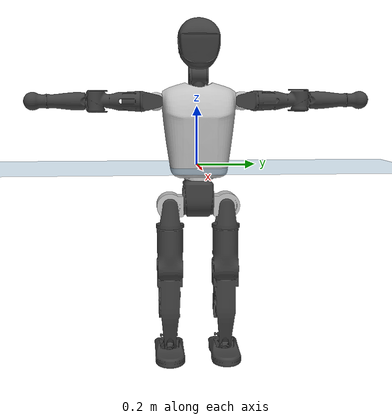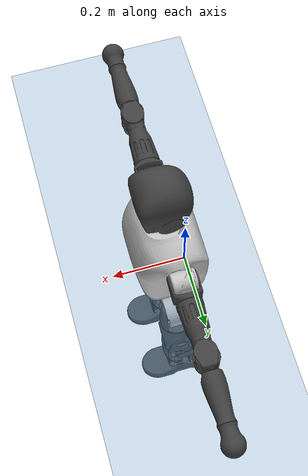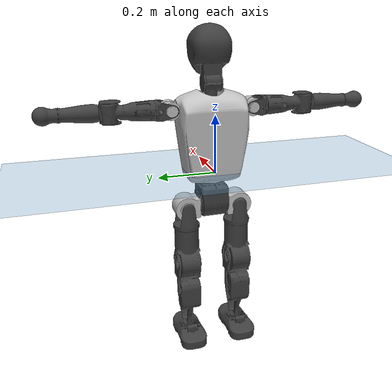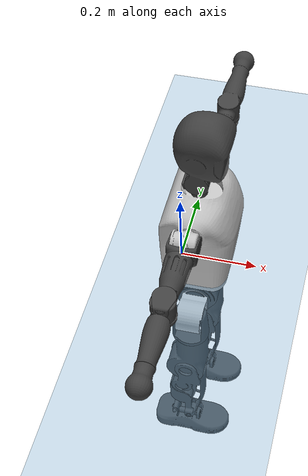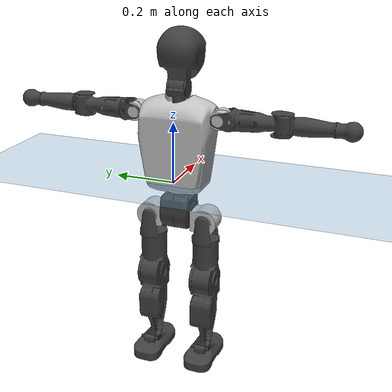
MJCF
<mujoco model="T1">
  <compiler angle="radian" assetdir="assets" balanceinertia="true" inertiafromgeom="false"/>

  <option timestep="0.005" density="1.2" viscosity="2e-05"/>

  <size nkey="1"/>

  <visual>
    <quality shadowsize="8192"/>
    <map shadowclip="0.5"/>
  </visual>

  <default>
    <default class="/">
      <joint armature="0.01" damping="0.01" frictionloss="0.1"/>
      <geom contype="0" conaffinity="0" group="1" solref="-1000 -80"/>
      <site size="0.01 0.005 0.005" group="5"/>
      <general forcelimited="true" biastype="affine" gainprm="25" biasprm="0 -25 -0.6"/>
      <default class="t1">
        <geom rgba="0.25 0.25 0.25 1"/>
        <default class="visual">
          <geom type="mesh" group="2"/>
        </default>
        <default class="collision">
          <geom group="3"/>
        </default>
        <default class="foot">
          <geom size="0.1115 0.05 0.015" type="box" condim="6" group="4" priority="1" solimp="0.015 1 0.015"/>
        </default>
        <default class="reward_collision_sphere">
          <geom group="5" rgba="1 0 0 1"/>
        </default>
      </default>
    </default>
  </default>

  <asset>
    <texture type="skybox" colorspace="auto" name="//unnamed_texture_0" builtin="gradient" rgb1="0.95 0.95 0.95" rgb2="0.95 0.95 0.95" width="100" height="600"/>
    <texture type="2d" colorspace="auto" name="texplane" builtin="checker" rgb1="0.345 0.575 0.748" rgb2="0.345 0.575 0.748" markrgb="1 1 1" width="512" height="512"/>
    <material name="MatPlane" class="/" texture="texplane" texuniform="true" texrepeat="2 2" specular="0.9"/>
    <mesh name="Trunk" class="/" file="Trunk.stl"/>
    <mesh name="H1" class="/" file="H1.stl"/>
    <mesh name="H2" class="/" file="H2.stl"/>
    <mesh name="AL1" class="/" file="AL1.stl"/>
    <mesh name="AL2" class="/" file="AL2.stl"/>
    <mesh name="AL3" class="/" file="AL3.stl"/>
    <mesh name="left_hand_link" class="/" file="left_hand_link.stl"/>
    <mesh name="AR1" class="/" file="AR1.stl"/>
    <mesh name="AR2" class="/" file="AR2.stl"/>
    <mesh name="AR3" class="/" file="AR3.stl"/>
    <mesh name="right_hand_link" class="/" file="right_hand_link.stl"/>
    <mesh name="Waist" class="/" file="Waist.stl"/>
    <mesh name="Hip_Pitch_Left" class="/" file="Hip_Pitch_Left.stl"/>
    <mesh name="Hip_Roll_Left" class="/" file="Hip_Roll_Left.stl"/>
    <mesh name="Hip_Yaw_Left" class="/" file="Hip_Yaw_Left.stl"/>
    <mesh name="Shank_Left" class="/" file="Shank_Left.stl"/>
    <mesh name="Ankle_Cross_Left" class="/" file="Ankle_Cross_Left.stl"/>
    <mesh name="left_foot_link" class="/" file="left_foot_link.stl"/>
    <mesh name="Hip_Pitch_Right" class="/" file="Hip_Pitch_Right.stl"/>
    <mesh name="Hip_Roll_Right" class="/" file="Hip_Roll_Right.stl"/>
    <mesh name="Hip_Yaw_Right" class="/" file="Hip_Yaw_Right.stl"/>
    <mesh name="Shank_Right" class="/" file="Shank_Right.stl"/>
    <mesh name="Ankle_Cross_Right" class="/" file="Ankle_Cross_Right.stl"/>
    <mesh name="right_foot_link" class="/" file="right_foot_link.stl"/>
  </asset>

  <worldbody>
    <geom name="floor" class="/" size="100 100 0.125" type="plane" group="0" material="MatPlane"/>
    <light name="toplight_shadow" class="/" pos="0 0 5" dir="0.0990148 0.0990148 -0.990148" type="directional" ambient="0.04 0.04 0.04" diffuse="0.55 0.55 0.55" specular="0.12 0.12 0.12"/>
    <light name="toplight_fill" class="/" pos="0 0 5" dir="0.0990148 0.0990148 -0.990148" type="directional" castshadow="false" ambient="0.04 0.04 0.04" diffuse="0.3 0.3 0.3" specular="0.08 0.08 0.08"/>
    <body name="trunk" childclass="t1" pos="-0.000109047 0.000254439 0.000127284" quat="1 -6.99701e-06 4.47277e-05 1.54673e-05">
      <inertial pos="0.0430294 -0.000685787 0.104848" quat="0.99993 0.00114608 -0.0116393 -0.00171865" mass="8.73465" diaginertia="0.0294508 0.0518892 0.0543124"/>
      <joint name="//unnamed_joint_0" type="free" armature="0" damping="0" frictionloss="0"/>
      <geom name="//unnamed_geom_1" class="visual" rgba="0.76 0.76 0.76 1" mesh="Trunk"/>
      <geom name="//unnamed_geom_2" class="collision" size="0.0677637 0.0903515 0.135527" pos="0.0477767 0 0.119284" type="box"/>
      <geom name="//unnamed_geom_3" class="reward_collision_sphere" size="0.103904" pos="0.0477767 0 0.0994033"/>
      <geom name="//unnamed_geom_4" class="reward_collision_sphere" size="0.0135527" pos="0.0477767 0.0782199 0"/>
      <geom name="//unnamed_geom_5" class="reward_collision_sphere" size="0.0135527" pos="0.0477767 -0.0782199 0"/>
      <geom name="//unnamed_geom_6" class="reward_collision_sphere" size="0.0135527" pos="0.0477767 0.0984651 0.178926"/>
      <geom name="//unnamed_geom_7" class="reward_collision_sphere" size="0.0135527" pos="0.0477767 -0.0984651 0.178926"/>
      <site name="imu" pos="-0.000285626 0.00432785 0.00479381" size="0.00903515"/>
      <camera name="track" pos="0 -1.84047 0" quat="0.707107 0.707107 0 0" mode="trackcom"/>
      <camera name="ego_camera" pos="0.097146 0 0.417494" quat="-0.5 -0.5 0.5 0.5"/>
      <body name="H1" pos="0.0492944 0.000419633 0.241943" quat="1 -6.93915e-06 0.000206033 -0.000246886">
        <inertial pos="-0.000608226 -0.00176681 0.0561274" quat="0.765939 -0.0120667 0.00262655 0.642795" mass="0.324547" diaginertia="7.85655e-05 0.000146432 0.000147243"/>
        <joint name="AAHead_yaw" pos="0 0 0" axis="0.00425257 -0.00238472 0.999988" stiffness="0.000820462" range="-1.59027 1.60256" armature="0.00904677" damping="0.00780413" frictionloss="0.0927687"/>
        <geom name="//unnamed_geom_8" class="visual" mesh="H1"/>
        <body name="H2" pos="-0.000410867 -0.000172568 0.0592687" quat="1 -0.000470866 0.000674657 0.000444223">
          <inertial pos="0.00643876 0.00011332 0.0980211" quat="0.988382 0.105294 -0.0739896 -0.080866" mass="0.464907" diaginertia="0.000652931 0.00128648 0.00163941"/>
          <joint name="Head_pitch" pos="0 0 0" axis="-8.83958e-05 -1 -1.32506e-05" range="-1.22254 0.344385" armature="0.00894175" damping="0.00863992" frictionloss="0.0888753"/>
          <geom name="//unnamed_geom_9" class="visual" mesh="H2"/>
          <geom name="//unnamed_geom_10" class="collision" size="0.0722812" pos="0.00796279 0 0.109344"/>
          <geom name="//unnamed_geom_11" class="reward_collision_sphere" size="0.0813164" pos="0.0159256 0 0.0994033"/>
        </body>
      </body>
      <body name="AL1" pos="0.0473278 0.0975682 0.218232" quat="1 -3.17675e-05 0.000439252 2.39649e-05">
        <inertial pos="-0.00125365 0.0417885 2.04103e-05" quat="0.503624 0.496601 -0.507944 0.491673" mass="0.392258" diaginertia="0.000443083 0.000853891 0.000284401"/>
        <joint name="Left_Shoulder_Pitch" pos="0 0 0" axis="0.00184278 0.999998 -0.000581886" range="-3.279 1.22458" armature="0.00917032" damping="0.0115929" frictionloss="0.0947928"/>
        <geom name="//unnamed_geom_12" class="visual" rgba="0.76 0.76 0.76 1" mesh="AL1"/>
        <body name="AL2" pos="0.00126411 0.0429737 -0.000146996" quat="1 0.000275302 -0.000127202 -0.000470666">
          <inertial pos="0.00480322 0.0339536 -0.000259934" quat="0.490387 0.513367 -0.48699 0.50874" mass="0.116919" diaginertia="0.000127212 0.000224023 0.000169981"/>
          <joint name="Left_Shoulder_Roll" pos="0 0 0" axis="-0.999997 -0.00122769 -0.00202203" stiffness="0.00110595" range="-1.57386 1.73913" armature="0.00882646" damping="0.00578876" frictionloss="0.0879289"/>
          <geom name="//unnamed_geom_13" class="visual" mesh="AL2"/>
          <body name="AL3" pos="0.00159235 0.0569714 0.000583353" quat="1 1.15488e-05 0.000212741 0.000453905">
            <inertial pos="0.000869938 0.0787853 -0.00121008" quat="0.710484 0.703677 -0.00148157 0.00703555" mass="0.769284" diaginertia="0.0042393 0.00884788 0.000616934"/>
            <joint name="Left_Elbow_Pitch" pos="0 0 0" axis="0.00258057 -0.999997 -6.51488e-05" range="-2.27461 2.30173" armature="0.00924375" damping="0.0105279" frictionloss="0.0978976"/>
            <geom name="//unnamed_geom_14" class="visual" mesh="AL3"/>
            <geom name="//unnamed_geom_15" class="collision" size="0.0271055 0.0677637" pos="0 0.0460117 0" quat="0.707105 0.707108 0 0" type="cylinder"/>
            <geom name="//unnamed_geom_16" class="reward_collision_sphere" size="0.0325266"/>
            <body name="left_hand_link" pos="0.00140446 0.134714 0.00142675" quat="1 0.000419733 -0.00053526 0.000326796">
              <inertial pos="-0.000550611 0.100838 0.000374975" quat="0.708321 0.70589 -3.1768e-05 1.02565e-05" mass="0.244734" diaginertia="0.00266568 0.00539451 0.000207091"/>
              <joint name="Left_Elbow_Yaw" pos="0 0 0" axis="-0.00220278 -0.00587984 0.99998" range="-2.42589 0.0351972" armature="0.00882479" damping="0.00528021" frictionloss="0.0862428"/>
              <geom name="//unnamed_geom_17" class="visual" mesh="left_hand_link"/>
              <geom name="//unnamed_geom_18" class="collision" size="0.0271055 0.0790576" pos="0 0.11963 0" quat="0.707105 0.707108 0 0" type="cylinder"/>
              <geom name="//unnamed_geom_19" class="reward_collision_sphere" size="0.0451758"/>
              <geom name="//unnamed_geom_20" class="reward_collision_sphere" size="0.031623" pos="0 0.101226 0"/>
              <geom name="//unnamed_geom_21" class="reward_collision_sphere" size="0.031623" pos="0 0.19785 0"/>
            </body>
          </body>
        </body>
      </body>
      <body name="AR1" pos="0.0455504 -0.0956855 0.216213" quat="1 4.65083e-05 0.000424548 4.29164e-05">
        <inertial pos="-0.000503445 -0.04253 -0.000317595" quat="0.502225 0.496726 -0.504889 0.496105" mass="0.38657" diaginertia="0.000438981 0.000862808 0.000284847"/>
        <joint name="Right_Shoulder_Pitch" pos="0 0 0" axis="0.0110802 -0.999937 -0.00197566" range="-1.22618 3.33454" armature="0.00895492" damping="0.00210146" frictionloss="0.0837336"/>
        <geom name="//unnamed_geom_22" class="visual" rgba="0.76 0.76 0.76 1" mesh="AR1"/>
        <body name="AR2" pos="0.00108458 -0.04278 -0.00016778" quat="1 -1.93848e-05 -0.000108081 0.000115302">
          <inertial pos="0.00316293 -0.0347006 0.000974586" quat="0.514681 0.486567 -0.509969 0.488146" mass="0.121917" diaginertia="0.000130169 0.000234236 0.000173991"/>
          <joint name="Right_Shoulder_Roll" pos="0 0 0" axis="-0.999959 0.00580392 -0.00697892" range="-1.74226 1.57214" armature="0.00885551" damping="0.00467925" frictionloss="0.0924169"/>
          <geom name="//unnamed_geom_23" class="visual" mesh="AR2"/>
          <body name="AR3" pos="-0.00125661 -0.0561571 0.000474085" quat="1 -0.000354745 0.000251502 -6.59849e-05">
            <inertial pos="-0.000499661 -0.0784116 0.00010685" quat="0.71123 0.702959 -0.000646033 -0.000649488" mass="0.773564" diaginertia="0.00422405 0.00865486 0.000616359"/>
            <joint name="Right_Elbow_Pitch" pos="0 0 0" axis="5.70513e-05 1 -0.000292497" range="-2.27577 2.25378" armature="0.00902505" damping="0.0110252" frictionloss="0.0894414"/>
            <geom name="//unnamed_geom_24" class="visual" mesh="AR3"/>
            <geom name="//unnamed_geom_25" class="collision" size="0.0271055 0.0677637" pos="0 -0.0460117 0" quat="0.707105 0.707108 0 0" type="cylinder"/>
            <geom name="//unnamed_geom_26" class="reward_collision_sphere" size="0.0325266"/>
            <body name="right_hand_link" pos="-5.72045e-05 -0.135694 3.40813e-05" quat="1 -1.07457e-05 2.07915e-05 0.000110149">
              <inertial pos="-0.000735561 -0.101001 -0.000455689" quat="0.706241 0.707968 -0.00155219 -0.00161241" mass="0.237784" diaginertia="0.0026462 0.00536866 0.000209172"/>
              <joint name="Right_Elbow_Yaw" pos="0 0 0" axis="0.000925202 -0.00219321 0.999997" range="-0.0190004 2.45374" armature="0.00881849" damping="0.00816005" frictionloss="0.0884892"/>
              <geom name="//unnamed_geom_27" class="visual" mesh="right_hand_link"/>
              <geom name="//unnamed_geom_28" class="collision" size="0.0271055 0.0790576" pos="0 -0.11963 0" quat="0.707105 0.707108 0 0" type="cylinder"/>
              <geom name="//unnamed_geom_29" class="reward_collision_sphere" size="0.0451758"/>
              <geom name="//unnamed_geom_30" class="reward_collision_sphere" size="0.031623" pos="0 -0.101226 0"/>
              <geom name="//unnamed_geom_31" class="reward_collision_sphere" size="0.031623" pos="0 -0.19785 0"/>
            </body>
          </body>
        </body>
      </body>
      <body name="Waist" pos="0.048127 -0.00152964 -0.114571" quat="1 8.37863e-05 7.74238e-05 -5.31022e-05">
        <inertial pos="0.00211869 -0.00106725 0.00770441" quat="0.983656 0.000169068 -0.180036 0.00289639" mass="1.86052" diaginertia="0.00166579 0.00341037 0.00454142"/>
        <joint name="Waist" pos="0 0 0" axis="-0.0017206 -0.000704462 0.999998" range="-1.56415 1.5754" armature="0.00875484" damping="0.00806103" frictionloss="0.0841322"/>
        <geom name="//unnamed_geom_32" class="visual" mesh="Waist"/>
        <body name="Hip_Pitch_Left" pos="-0.00047288 0.0964327 0.000499678" quat="1 -0.000192114 0.000491158 -0.000139565">
          <inertial pos="0.000694314 -0.00639561 -0.01806" quat="0.97452 0.223961 0.0123112 -0.00109814" mass="0.75274" diaginertia="0.000584511 0.000994855 0.00124605"/>
          <joint name="Left_Hip_Pitch" pos="0 0 0" axis="-0.00211046 0.999976 0.00664931" range="-1.80936 1.55989" armature="0.00938039" damping="0.0127868" frictionloss="0.0861563"/>
          <geom name="//unnamed_geom_33" class="visual" rgba="0.76 0.76 0.76 1" mesh="Hip_Pitch_Left"/>
          <body name="Hip_Roll_Left" pos="0.00154701 -0.00077615 -0.0208429" quat="0.999999 -6.86706e-05 -0.000569714 -0.000880038">
            <inertial pos="0.00010241 -0.000450007 -0.0537326" quat="0.713214 -0.00443977 -0.00665707 0.700901" mass="0.285069" diaginertia="0.000555099 0.00100991 0.000505314"/>
            <joint name="Left_Hip_Roll" pos="0 0 0" axis="-0.999971 0.00123409 -0.00754448" range="-1.56838 0.226248" armature="0.00947784" damping="0.0118373" frictionloss="0.0888381"/>
            <geom name="//unnamed_geom_34" class="visual" mesh="Hip_Roll_Left"/>
            <geom name="//unnamed_geom_35" class="reward_collision_sphere" size="0.0496933"/>
            <body name="Hip_Yaw_Left" pos="0.00245443 -0.00114919 -0.0812526" quat="1 0.000212134 -0.000198493 0.000809965">
              <inertial pos="-0.00508845 -0.000727512 -0.0879838" quat="0.697221 -0.0358287 -0.0317689 0.715255" mass="1.59984" diaginertia="0.00828584 0.0167545 0.00252694"/>
              <joint name="Left_Hip_Yaw" pos="0 0 0" axis="-0.000424766 0.00737878 -0.999973" range="-1.00687 0.979128" armature="0.0092732" damping="0.0107555" frictionloss="0.0859568"/>
              <geom name="//unnamed_geom_36" class="visual" mesh="Hip_Yaw_Left"/>
              <geom name="//unnamed_geom_37" class="collision" size="0.0451758 0.0722812" type="cylinder"/>
              <body name="Shank_Left" pos="-0.0116189 -0.000407715 -0.135305" quat="1 6.8835e-05 -6.37399e-05 -2.58576e-05">
                <inertial pos="-0.0040813 -0.000379519 -0.123369" quat="0.997535 0.00100249 -0.0240514 0.0659155" mass="1.28985" diaginertia="0.0111847 0.0228716 0.00180471"/>
                <joint name="Left_Knee_Pitch" pos="0 0 0" axis="0.000333432 1 -0.000282044" range="-0.0177522 2.32096" armature="0.00891377" damping="0.0119557" frictionloss="0.0927449"/>
                <geom name="//unnamed_geom_38" class="visual" mesh="Shank_Left"/>
                <geom name="//unnamed_geom_39" class="collision" size="0.0451758 0.0677637" pos="0 0 -0.119284" type="cylinder"/>
                <geom name="//unnamed_geom_40" class="reward_collision_sphere" size="0.0587285"/>
                <body name="Ankle_Cross_Left" pos="-0.000685754 -0.000341739 -0.277262" quat="1 -0.000111889 0.000268691 -0.000170521">
                  <inertial pos="-0.00284183 -0.000319695 -0.00706718" quat="0.444461 0.550997 0.550356 0.442679" mass="0.0551077" diaginertia="9.26162e-06 1.73115e-05 1.11209e-05"/>
                  <joint name="Left_Ankle_Pitch" pos="0 0 0" axis="-0.00178988 0.99999 -0.0041277" range="-0.855897 0.33431" armature="0.00905124" damping="0.00438804" frictionloss="0.0909571"/>
                  <geom name="//unnamed_geom_41" class="visual" mesh="Ankle_Cross_Left"/>
                  <body name="left_foot_link" pos="-0.000816815 -0.00030962 -0.0118752" quat="1 5.04483e-06 -1.19118e-06 -4.80542e-05">
                    <inertial pos="-0.000803165 0.000554414 -0.00870957" quat="0.000465753 0.618856 0.000739595 0.785504" mass="0.494438" diaginertia="0.000879268 0.00154804 0.00208404"/>
                    <joint name="Left_Ankle_Roll" pos="0 0 0" axis="-1 0.000177022 0.000381498" range="-0.424561 0.468466" armature="0.00975661" damping="0.0102453" frictionloss="0.0866559"/>
                    <geom name="//unnamed_geom_42" class="visual" mesh="left_foot_link"/>
                    <geom name="left_foot" class="foot" size="0.10484 0.0443801 0.0141457" pos="0.00796279 0 -0.0149105"/>
                    <geom name="//unnamed_geom_44" class="reward_collision_sphere" size="0.0469828" pos="0.00796279 0 -0.0149105"/>
                    <geom name="//unnamed_geom_45" class="reward_collision_sphere" size="0.0271055" pos="0.0756465 -0.0211654 -0.0149105"/>
                    <geom name="//unnamed_geom_46" class="reward_collision_sphere" size="0.0271055" pos="-0.0557395 -0.0211654 -0.0149105"/>
                    <site name="left_foot" class="foot" pos="0.00796279 0 -0.0149105" size="0.00903515"/>
                  </body>
                </body>
              </body>
            </body>
          </body>
        </body>
        <body name="Hip_Pitch_Right" pos="-0.000110559 -0.0965035 -0.000392911" quat="1 0.00026148 -0.000146058 0.000249236">
          <inertial pos="-0.000519779 0.00745772 -0.0178531" quat="0.973658 -0.227575 0.0121129 -0.00721102" mass="0.771492" diaginertia="0.000585566 0.000975844 0.00122706"/>
          <joint name="Right_Hip_Pitch" pos="0 0 0" axis="0.00175268 -0.999991 0.00379613" range="-1.57296 1.81315" armature="0.00997256" damping="0.00735865" frictionloss="0.0946888"/>
          <geom name="//unnamed_geom_47" class="visual" rgba="0.76 0.76 0.76 1" mesh="Hip_Pitch_Right"/>
          <body name="Hip_Roll_Right" pos="0.000212124 0.000534941 -0.0186756" quat="1 -1.74989e-05 0.00026676 0.000330196">
            <inertial pos="0.000852923 -0.00183944 -0.0533354" quat="0.705429 -0.00452665 -0.00156658 0.708764" mass="0.278081" diaginertia="0.000547817 0.000973555 0.000486809"/>
            <joint name="Right_Hip_Roll" pos="0 0 0" axis="-0.999999 -0.000438132 -0.00121646" range="-0.210202 1.56956" armature="0.00906983" damping="0.00483293" frictionloss="0.0894417"/>
            <geom name="//unnamed_geom_48" class="visual" mesh="Hip_Roll_Right"/>
            <geom name="//unnamed_geom_49" class="reward_collision_sphere" size="0.0496933"/>
            <body name="Hip_Yaw_Right" pos="0.000693781 -0.000177908 -0.082096" quat="1 -0.000103091 0.000170436 0.000250193">
              <inertial pos="-0.00593726 -0.00233634 -0.0898677" quat="0.711524 -0.0309666 -0.0346319 0.701124" mass="1.54659" diaginertia="0.00802502 0.0162631 0.00246808"/>
              <joint name="Right_Hip_Yaw" pos="0 0 0" axis="-0.00138079 -0.000447354 -0.999999" range="-0.989075 1.01444" armature="0.00897619" damping="0.00551009" frictionloss="0.0905727"/>
              <geom name="//unnamed_geom_50" class="visual" mesh="Hip_Yaw_Right"/>
              <geom name="//unnamed_geom_51" class="collision" size="0.0451758 0.0722812" type="cylinder"/>
              <body name="Shank_Right" pos="-0.0105871 -0.00150088 -0.133873" quat="1 -8.02987e-05 -0.000174221 0.000165378">
                <inertial pos="-0.0052065 -0.000592971 -0.120888" quat="0.999247 -0.000544398 -0.0232404 -0.0310488" mass="1.31915" diaginertia="0.0109178 0.0232053 0.00189807"/>
                <joint name="Right_Knee_Pitch" pos="0 0 0" axis="0.00422426 -0.99999 -0.00125073" range="-2.36011 -0.0212114" armature="0.00905684" damping="0.00543805" frictionloss="0.088961"/>
                <geom name="//unnamed_geom_52" class="visual" mesh="Shank_Right"/>
                <geom name="//unnamed_geom_53" class="collision" size="0.0451758 0.0677637" pos="0 0 -0.119284" type="cylinder"/>
                <geom name="//unnamed_geom_54" class="reward_collision_sphere" size="0.0587285"/>
                <body name="Ankle_Cross_Right" pos="0.000732252 -0.0010109 -0.277825" quat="1 -3.55804e-05 9.93914e-05 -0.000113785">
                  <inertial pos="-0.00262478 0.000130592 -0.00931462" quat="0.449176 0.548741 0.551376 0.439442" mass="0.053431" diaginertia="8.96304e-06 1.67879e-05 1.06682e-05"/>
                  <joint name="Right_Ankle_Pitch" pos="0 0 0" axis="0.000794923 -0.999991 0.00427378" range="-0.353719 0.851206" armature="0.00901858" damping="0.0056352" frictionloss="0.0886891"/>
                  <geom name="//unnamed_geom_55" class="visual" mesh="Ankle_Cross_Right"/>
                  <body name="right_foot_link" pos="-0.000241681 -0.000672923 -0.0119421" quat="1 -0.000162041 0.000175727 -0.000405948">
                    <inertial pos="-0.00193246 -3.77018e-05 -0.00905013" quat="0.000237072 0.620378 -0.000649477 0.784303" mass="0.502441" diaginertia="0.000865454 0.00157854 0.00213493"/>
                    <joint name="Right_Ankle_Roll" pos="0 0 0" axis="-0.999999 0.00138841 0.000441379" range="-0.441128 0.444902" armature="0.00860206" damping="0.0169151" frictionloss="0.0889995"/>
                    <geom name="//unnamed_geom_56" class="visual" mesh="right_foot_link"/>
                    <geom name="right_foot" class="foot" size="0.0972768 0.0453319 0.0138764" pos="0.00796279 0 -0.0149105"/>
                    <geom name="//unnamed_geom_58" class="reward_collision_sphere" size="0.0361406"/>
                    <geom name="//unnamed_geom_59" class="reward_collision_sphere" size="0.0271055" pos="0.00796279 0 -0.0149105"/>
                    <geom name="//unnamed_geom_60" class="reward_collision_sphere" size="0.0271055" pos="0.0756465 0.0211654 -0.0149105"/>
                    <geom name="//unnamed_geom_61" class="reward_collision_sphere" size="0.0271055" pos="-0.0557395 0.0211654 -0.0149105"/>
                    <site name="right_foot" class="foot" pos="0.00796279 0 -0.0149105" size="0.00903515"/>
                  </body>
                </body>
              </body>
            </body>
          </body>
        </body>
      </body>
    </body>
  </worldbody>

  <contact>
    <pair class="/" geom1="floor" geom2="left_foot" name="//unnamed_contact_0"/>
    <pair class="/" geom1="floor" geom2="right_foot" name="//unnamed_contact_1"/>
  </contact>

  <actuator>
    <general name="AAHead_yaw" class="/" joint="AAHead_yaw" forcerange="-6.26863 6.26863" gainprm="22.5374" biasprm="0 -22.5374 -0.539053"/>
    <general name="Head_pitch" class="/" joint="Head_pitch" forcerange="-6.31075 6.31075" gainprm="22.5374" biasprm="0 -22.5374 -0.539053"/>
    <general name="Left_Shoulder_Pitch" class="/" joint="Left_Shoulder_Pitch" forcerange="-16.7799 16.7799" gainprm="22.5374" biasprm="0 -22.5374 -0.539053"/>
    <general name="Left_Shoulder_Roll" class="/" joint="Left_Shoulder_Roll" forcerange="-16.5027 16.5027" gainprm="22.5374" biasprm="0 -22.5374 -0.539053"/>
    <general name="Left_Elbow_Pitch" class="/" joint="Left_Elbow_Pitch" forcerange="-17.0709 17.0709" gainprm="22.5374" biasprm="0 -22.5374 -0.539053"/>
    <general name="Left_Elbow_Yaw" class="/" joint="Left_Elbow_Yaw" forcerange="-16.6454 16.6454" gainprm="22.5374" biasprm="0 -22.5374 -0.539053"/>
    <general name="Right_Shoulder_Pitch" class="/" joint="Right_Shoulder_Pitch" forcerange="-15.4325 15.4325" gainprm="22.5374" biasprm="0 -22.5374 -0.539053"/>
    <general name="Right_Shoulder_Roll" class="/" joint="Right_Shoulder_Roll" forcerange="-16.4974 16.4974" gainprm="22.5374" biasprm="0 -22.5374 -0.539053"/>
    <general name="Right_Elbow_Pitch" class="/" joint="Right_Elbow_Pitch" forcerange="-17.1263 17.1263" gainprm="22.5374" biasprm="0 -22.5374 -0.539053"/>
    <general name="Right_Elbow_Yaw" class="/" joint="Right_Elbow_Yaw" forcerange="-15.6233 15.6233" gainprm="22.5374" biasprm="0 -22.5374 -0.539053"/>
    <general name="Waist" class="/" joint="Waist" forcerange="-27.0179 27.0179" gainprm="22.5374" biasprm="0 -22.5374 -0.539053"/>
    <general name="Left_Hip_Pitch" class="/" joint="Left_Hip_Pitch" forcerange="-41.7664 41.7664" gainprm="22.5374" biasprm="0 -22.5374 -0.539053"/>
    <general name="Left_Hip_Roll" class="/" joint="Left_Hip_Roll" forcerange="-28.1247 28.1247" gainprm="22.5374" biasprm="0 -22.5374 -0.539053"/>
    <general name="Left_Hip_Yaw" class="/" joint="Left_Hip_Yaw" forcerange="-25.3111 25.3111" gainprm="22.5374" biasprm="0 -22.5374 -0.539053"/>
    <general name="Left_Knee_Pitch" class="/" joint="Left_Knee_Pitch" forcerange="-54.0904 54.0904" gainprm="22.5374" biasprm="0 -22.5374 -0.539053"/>
    <general name="Left_Ankle_Pitch" class="/" joint="Left_Ankle_Pitch" forcerange="-16.6722 16.6722" gainprm="22.5374" biasprm="0 -22.5374 -0.539053"/>
    <general name="Left_Ankle_Roll" class="/" joint="Left_Ankle_Roll" forcerange="-13.4742 13.4742" gainprm="22.5374" biasprm="0 -22.5374 -0.539053"/>
    <general name="Right_Hip_Pitch" class="/" joint="Right_Hip_Pitch" forcerange="-40.3236 40.3236" gainprm="22.5374" biasprm="0 -22.5374 -0.539053"/>
    <general name="Right_Hip_Roll" class="/" joint="Right_Hip_Roll" forcerange="-27.8822 27.8822" gainprm="22.5374" biasprm="0 -22.5374 -0.539053"/>
    <general name="Right_Hip_Yaw" class="/" joint="Right_Hip_Yaw" forcerange="-27.988 27.988" gainprm="22.5374" biasprm="0 -22.5374 -0.539053"/>
    <general name="Right_Knee_Pitch" class="/" joint="Right_Knee_Pitch" forcerange="-55.5 55.5" gainprm="22.5374" biasprm="0 -22.5374 -0.539053"/>
    <general name="Right_Ankle_Pitch" class="/" joint="Right_Ankle_Pitch" forcerange="-17.6341 17.6341" gainprm="22.5374" biasprm="0 -22.5374 -0.539053"/>
    <general name="Right_Ankle_Roll" class="/" joint="Right_Ankle_Roll" forcerange="-12.8703 12.8703" gainprm="22.5374" biasprm="0 -22.5374 -0.539053"/>
  </actuator>

  <sensor>
    <gyro site="imu" name="imu_angular_velocity"/>
    <velocimeter site="imu" name="imu_linear_velocity"/>
    <framelinvel objtype="site" objname="left_foot" name="left_foot_global_linear_velocity"/>
    <framelinvel objtype="site" objname="right_foot" name="right_foot_global_linear_velocity"/>
  </sensor>

  <keyframe>
    <key name="home" qpos="0 0 0.6385 1 0 0 0 0 0 0 1.4 0 -0.4 0 -1.4 0 0.4 0 -0.4 0 0 0.8 -0.4 0 0.4 0 0 -0.8 0.4 0"/>
  </keyframe>
</mujoco>
